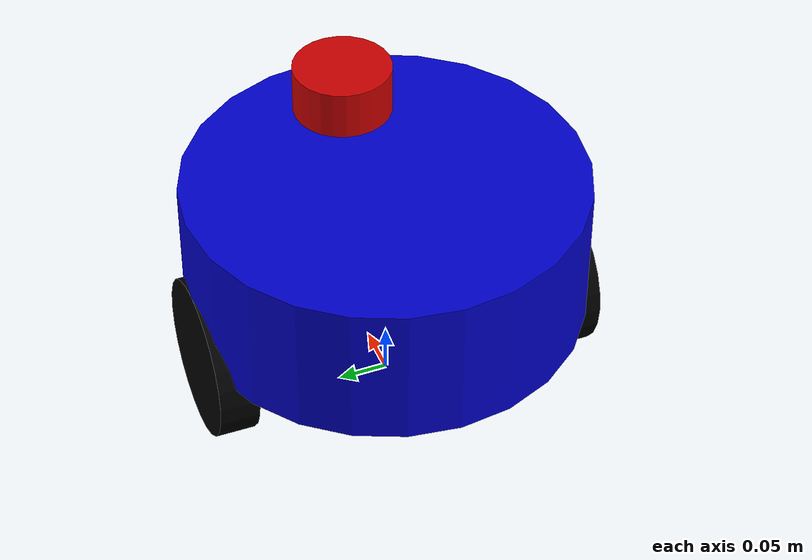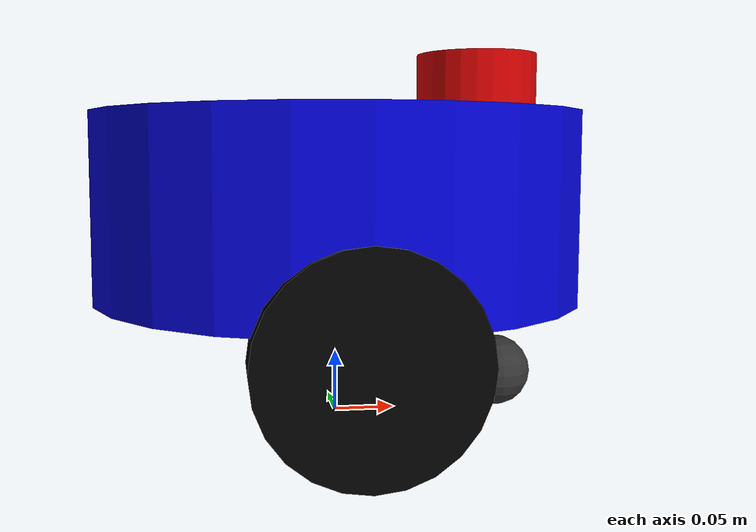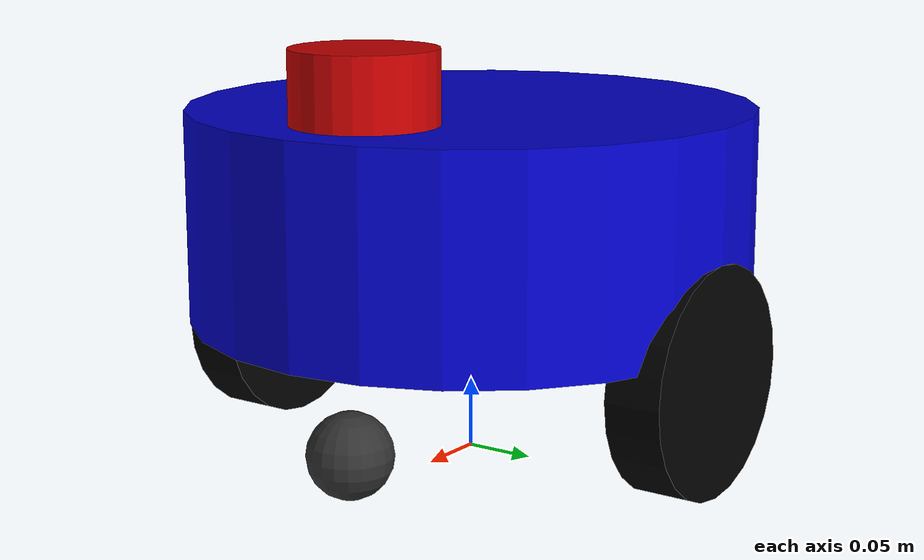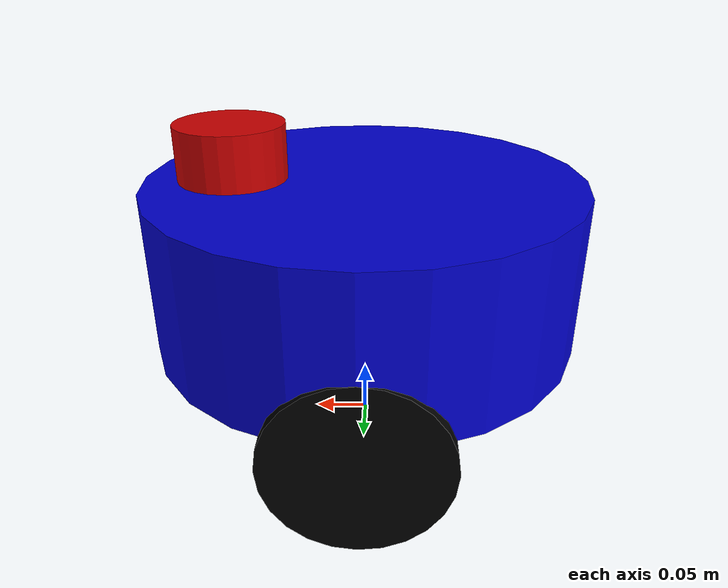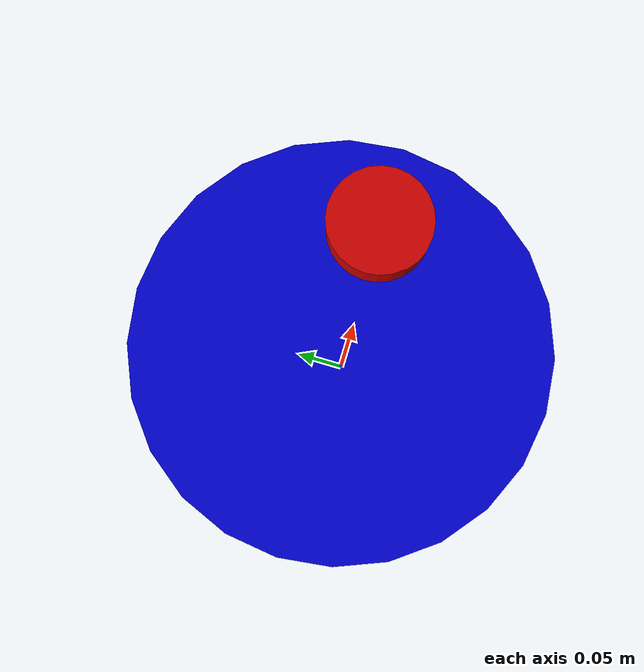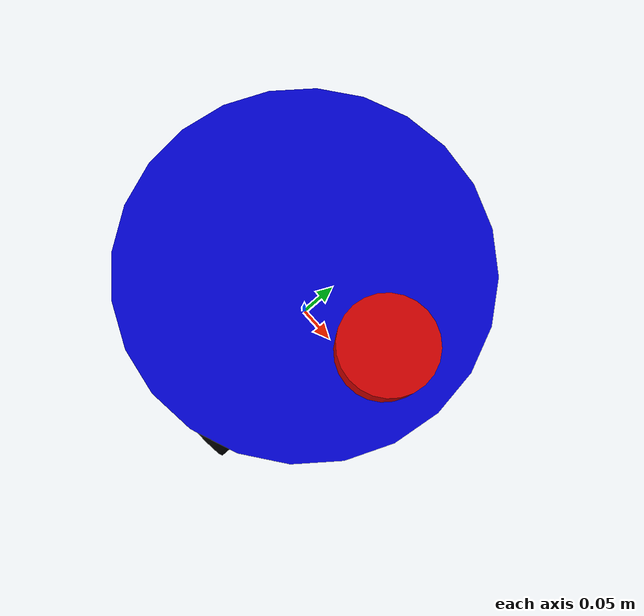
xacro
<?xml version="1.0"?>
<robot name="amr_robot" xmlns:xacro="http://www.ros.org/wiki/xacro">

  <!-- Materials -->
  <material name="dark_grey">
    <color rgba="0.2 0.2 0.2 1.0"/>
  </material>
  <material name="blue">
    <color rgba="0.0 0.0 0.8 1.0"/>
  </material>
  <material name="black">
    <color rgba="0.0 0.0 0.0 1.0"/>
  </material>
  <material name="red">
    <color rgba="0.8 0.0 0.0 1.0"/>
  </material>

  <!-- Inertia Macros -->
  <xacro:macro name="cylinder_inertia" params="m r h">
    <inertial>
      <mass value="${m}"/>
      <inertia ixx="${(m/12) * (3*r*r + h*h)}" ixy = "0" ixz = "0"
               iyy="${(m/12) * (3*r*r + h*h)}" iyz = "0"
               izz="${(m/2) * (r*r)}"/>
    </inertial>
  </xacro:macro>

  <xacro:macro name="sphere_inertia" params="m r">
    <inertial>
      <mass value="${m}"/>
      <inertia ixx="${(2/5) * m * r * r}" ixy = "0" ixz = "0"
               iyy="${(2/5) * m * r * r}" iyz = "0"
               izz="${(2/5) * m * r * r}"/>
    </inertial>
  </xacro:macro>

  <xacro:macro name="box_inertia" params="m x y z">
    <inertial>
      <mass value="${m}"/>
      <inertia ixx="${(m/12) * (y*y + z*z)}" ixy = "0" ixz = "0"
               iyy="${(m/12) * (x*x + z*z)}" iyz = "0"
               izz="${(m/12) * (x*x + y*y)}"/>
    </inertial>
  </xacro:macro>

  <!-- Robot footprint (projected on the ground) -->
  <link name="base_footprint"/>

  <!-- Base link joint -->
  <joint name="base_joint" type="fixed">
    <parent link="base_footprint"/>
    <child link="base_link"/>
    <origin xyz="0 0 0.1" rpy="0 0 0"/>
  </joint>

  <!-- Chassis (Cylinder body) -->
  <link name="base_link">
    <visual>
      <origin xyz="0 0 0.075" rpy="0 0 0"/>
      <geometry>
        <cylinder radius="0.2" length="0.15"/>
      </geometry>
      <material name="blue"/>
    </visual>
    <collision>
      <origin xyz="0 0 0.075" rpy="0 0 0"/>
      <geometry>
        <cylinder radius="0.2" length="0.15"/>
      </geometry>
    </collision>
    <xacro:cylinder_inertia m="10.0" r="0.2" h="0.15"/>
  </link>

  <!-- Left Drive Wheel -->
  <link name="left_wheel">
    <visual>
      <origin xyz="0 0 0" rpy="${pi/2} 0 0"/>
      <geometry>
        <cylinder radius="0.08" length="0.04"/>
      </geometry>
      <material name="black"/>
    </visual>
    <collision>
      <origin xyz="0 0 0" rpy="${pi/2} 0 0"/>
      <geometry>
        <cylinder radius="0.08" length="0.04"/>
      </geometry>
    </collision>
    <xacro:cylinder_inertia m="1.5" r="0.08" h="0.04"/>
  </link>

  <joint name="left_wheel_joint" type="continuous">
    <parent link="base_link"/>
    <child link="left_wheel"/>
    <origin xyz="0 0.18 -0.02" rpy="0 0 0"/>
    <axis xyz="0 1 0"/>
  </joint>

  <!-- Right Drive Wheel -->
  <link name="right_wheel">
    <visual>
      <origin xyz="0 0 0" rpy="${pi/2} 0 0"/>
      <geometry>
        <cylinder radius="0.08" length="0.04"/>
      </geometry>
      <material name="black"/>
    </visual>
    <collision>
      <origin xyz="0 0 0" rpy="${pi/2} 0 0"/>
      <geometry>
        <cylinder radius="0.08" length="0.04"/>
      </geometry>
    </collision>
    <xacro:cylinder_inertia m="1.5" r="0.08" h="0.04"/>
  </link>

  <joint name="right_wheel_joint" type="continuous">
    <parent link="base_link"/>
    <child link="right_wheel"/>
    <origin xyz="0 -0.18 -0.02" rpy="0 0 0"/>
    <axis xyz="0 1 0"/>
  </joint>

  <!-- Passive Caster Wheel (Sphere) -->
  <link name="caster_wheel">
    <visual>
      <geometry>
        <sphere radius="0.03"/>
      </geometry>
      <material name="dark_grey"/>
    </visual>
    <collision>
      <geometry>
        <sphere radius="0.03"/>
      </geometry>
    </collision>
    <xacro:sphere_inertia m="0.5" r="0.03"/>
  </link>

  <joint name="caster_wheel_joint" type="fixed">
    <parent link="base_link"/>
    <child link="caster_wheel"/>
    <origin xyz="0.14 0 -0.07" rpy="0 0 0"/>
  </joint>

  <!-- Laser Sensor Mount -->
  <link name="laser_link">
    <visual>
      <geometry>
        <cylinder radius="0.05" length="0.05"/>
      </geometry>
      <material name="red"/>
    </visual>
    <collision>
      <geometry>
        <cylinder radius="0.05" length="0.05"/>
      </geometry>
    </collision>
    <xacro:cylinder_inertia m="0.25" r="0.05" h="0.05"/>
  </link>

  <joint name="laser_joint" type="fixed">
    <parent link="base_link"/>
    <child link="laser_link"/>
    <origin xyz="0.12 0 0.175" rpy="0 0 0"/>
  </joint>

  <!-- IMU Sensor Mount -->
  <link name="imu_link">
    <visual>
      <geometry>
        <box size="0.03 0.03 0.01"/>
      </geometry>
      <material name="dark_grey"/>
    </visual>
    <collision>
      <geometry>
        <box size="0.03 0.03 0.01"/>
      </geometry>
    </collision>
    <xacro:box_inertia m="0.05" x="0.03" y="0.03" z="0.01"/>
  </link>

  <joint name="imu_joint" type="fixed">
    <parent link="base_link"/>
    <child link="imu_link"/>
    <origin xyz="0 0 0.075" rpy="0 0 0"/>
  </joint>

  <!-- ================= Gazebo Plugins & Physics ================= -->

  <!-- Gazebo Material Colors -->
  <gazebo reference="base_link">
    <material>Gazebo/Blue</material>
  </gazebo>
  <gazebo reference="left_wheel">
    <material>Gazebo/FlatBlack</material>
  </gazebo>
  <gazebo reference="right_wheel">
    <material>Gazebo/FlatBlack</material>
  </gazebo>
  <gazebo reference="caster_wheel">
    <material>Gazebo/Grey</material>
    <!-- Low friction to slide easily -->
    <mu1 value="0.001"/>
    <mu2 value="0.001"/>
  </gazebo>
  <gazebo reference="laser_link">
    <material>Gazebo/Red</material>
  </gazebo>

  <!-- Differential Drive Plugin -->
  <gazebo>
    <plugin name="gazebo_ros_diff_drive" filename="libgazebo_ros_diff_drive.so">
      <update_rate>50</update_rate>
      <left_joint>left_wheel_joint</left_joint>
      <right_joint>right_wheel_joint</right_joint>
      <wheel_separation>0.36</wheel_separation>
      <wheel_diameter>0.16</wheel_diameter>
      <max_wheel_torque>15</max_wheel_torque>
      <max_wheel_acceleration>2.0</max_wheel_acceleration>

      <!-- Topics & Frames -->
      <command_topic>cmd_vel</command_topic>
      <odometry_topic>odom</odometry_topic>
      <odometry_frame>odom</odometry_frame>
      <robot_base_frame>base_footprint</robot_base_frame>

      <!-- Crucial: disable plugin TF output to prevent conflicts with EKF transform -->
      <publish_odom>true</publish_odom>
      <publish_odom_tf>false</publish_odom_tf>
      <publish_wheel_tf>true</publish_wheel_tf>
    </plugin>
  </gazebo>

  <!-- 2D LiDAR Gazebo Plugin -->
  <gazebo reference="laser_link">
    <sensor type="ray" name="laser_sensor">
      <pose>0 0 0 0 0 0</pose>
      <visualize>true</visualize>
      <update_rate>10</update_rate>
      <ray>
        <scan>
          <horizontal>
            <samples>360</samples>
            <resolution>1</resolution>
            <min_angle>-3.14159</min_angle>
            <max_angle>3.14159</max_angle>
          </horizontal>
        </scan>
        <range>
          <min>0.15</min>
          <max>12.0</max>
          <resolution>0.01</resolution>
        </range>
        <noise>
          <type>gaussian</type>
          <mean>0.0</mean>
          <stddev>0.01</stddev>
        </noise>
      </ray>
      <plugin name="gazebo_ros_laser_controller" filename="libgazebo_ros_ray_sensor.so">
        <ros>
          <remapping>~/out:=scan</remapping>
        </ros>
        <output_type>sensor_msgs/LaserScan</output_type>
        <frame_name>laser_link</frame_name>
      </plugin>
    </sensor>
  </gazebo>

  <!-- IMU Sensor Gazebo Plugin -->
  <gazebo reference="imu_link">
    <sensor name="imu_sensor" type="imu">
      <always_on>true</always_on>
      <update_rate>100</update_rate>
      <plugin name="imu_plugin" filename="libgazebo_ros_imu_sensor.so">
        <ros>
          <remapping>~/out:=imu/data</remapping>
        </ros>
        <frame_name>imu_link</frame_name>
        <initial_orientation_as_reference>false</initial_orientation_as_reference>
      </plugin>
    </sensor>
  </gazebo>

</robot>
